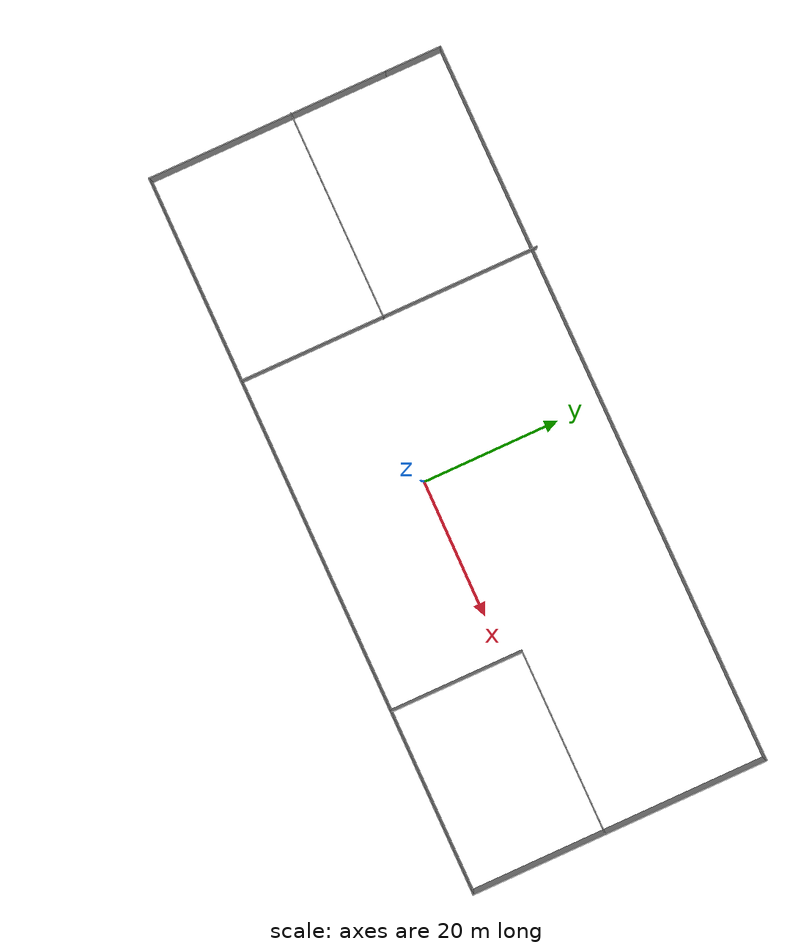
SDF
<?xml version='1.0'?>
<sdf version='1.6'>
  <model name='HomeBuilding'>
    <pose frame=''>0.157421 5.12798 0 0 -0 0</pose>
    <link name='Wall_11'>
      <collision name='Wall_11_Collision'>
        <geometry>
          <box>
            <size>19.5 0.15 2.5</size>
          </box>
        </geometry>
        <pose frame=''>0 0 1.25 0 -0 0</pose>
      </collision>
      <visual name='Wall_11_Visual'>
        <pose frame=''>0 0 1.25 0 -0 0</pose>
        <geometry>
          <box>
            <size>19.5 0.15 2.5</size>
          </box>
        </geometry>
        <material>
          <script>
            <uri>file://media/materials/scripts/gazebo.material</uri>
            <name>Gazebo/Grey</name>
          </script>
          <ambient>1 1 1 1</ambient>
        </material>
        <meta>
          <layer>0</layer>
        </meta>
      </visual>
      <pose frame=''>26.0787 -12.1762 0 0 -0 1.5708</pose>
    </link>
    <link name='Wall_12'>
      <collision name='Wall_12_Collision'>
        <geometry>
          <box>
            <size>26.75 0.15 2.5</size>
          </box>
        </geometry>
        <pose frame=''>0 0 1.25 0 -0 0</pose>
      </collision>
      <visual name='Wall_12_Visual'>
        <pose frame=''>0 0 1.25 0 -0 0</pose>
        <geometry>
          <box>
            <size>26.75 0.15 2.5</size>
          </box>
        </geometry>
        <material>
          <script>
            <uri>file://media/materials/scripts/gazebo.material</uri>
            <name>Gazebo/Grey</name>
          </script>
          <ambient>1 1 1 1</ambient>
        </material>
        <meta>
          <layer>0</layer>
        </meta>
      </visual>
      <pose frame=''>39.3787 -2.50123 0 0 -0 0</pose>
    </link>
    <link name='Wall_14'>
      <collision name='Wall_14_Collision'>
        <geometry>
          <box>
            <size>43.75 0.15 2.5</size>
          </box>
        </geometry>
        <pose frame=''>0 0 1.25 0 -0 0</pose>
      </collision>
      <visual name='Wall_14_Visual'>
        <pose frame=''>0 0 1.25 0 -0 0</pose>
        <geometry>
          <box>
            <size>43.75 0.15 2.5</size>
          </box>
        </geometry>
        <material>
          <script>
            <uri>file://media/materials/scripts/gazebo.material</uri>
            <name>Gazebo/Grey</name>
          </script>
          <ambient>1 1 1 1</ambient>
        </material>
        <meta>
          <layer>0</layer>
        </meta>
      </visual>
      <pose frame=''>-22.6766 0.069449 0 0 -0 1.5708</pose>
    </link>
    <link name='Wall_16'>
      <collision name='Wall_16_Collision'>
        <geometry>
          <box>
            <size>30.25 0.15 2.5</size>
          </box>
        </geometry>
        <pose frame=''>0 0 1.25 0 -0 0</pose>
      </collision>
      <visual name='Wall_16_Visual'>
        <pose frame=''>0 0 1.25 0 -0 0</pose>
        <geometry>
          <box>
            <size>30.25 0.15 2.5</size>
          </box>
        </geometry>
        <material>
          <script>
            <uri>file://media/materials/scripts/gazebo.material</uri>
            <name>Gazebo/Grey</name>
          </script>
          <ambient>1 1 1 1</ambient>
        </material>
        <meta>
          <layer>0</layer>
        </meta>
      </visual>
      <pose frame=''>-37.6762 -0.852663 0 0 -0 0</pose>
    </link>
    <link name='Wall_5'>
      <collision name='Wall_5_Collision'>
        <geometry>
          <box>
            <size>35 0.15 2.5</size>
          </box>
        </geometry>
        <pose frame=''>0 0 1.25 0 -0 0</pose>
      </collision>
      <visual name='Wall_5_Visual'>
        <pose frame=''>0 0 1.25 0 -0 0</pose>
        <geometry>
          <box>
            <size>35 0.15 2.5</size>
          </box>
        </geometry>
        <material>
          <script>
            <uri>file://media/materials/scripts/gazebo.material</uri>
            <name>Gazebo/Grey</name>
          </script>
          <ambient>1 1 1 1</ambient>
        </material>
        <meta>
          <layer>0</layer>
        </meta>
      </visual>
      <pose frame=''>-52.6238 -4.44445 0 0 -0 -1.5708</pose>
    </link>
    <link name='Wall_6'>
      <collision name='Wall_6_Collision'>
        <geometry>
          <box>
            <size>105.5 0.15 2.5</size>
          </box>
        </geometry>
        <pose frame=''>0 0 1.25 0 -0 0</pose>
      </collision>
      <visual name='Wall_6_Visual'>
        <pose frame=''>0 0 1.25 0 -0 0</pose>
        <geometry>
          <box>
            <size>105.5 0.15 2.5</size>
          </box>
        </geometry>
        <material>
          <script>
            <uri>file://media/materials/scripts/gazebo.material</uri>
            <name>Gazebo/Grey</name>
          </script>
          <ambient>1 1 1 1</ambient>
        </material>
        <meta>
          <layer>0</layer>
        </meta>
      </visual>
      <pose frame=''>0.051237 -21.8694 0 0 -0 0</pose>
    </link>
    <link name='Wall_7'>
      <collision name='Wall_7_Collision'>
        <geometry>
          <box>
            <size>43.25 0.15 2.5</size>
          </box>
        </geometry>
        <pose frame=''>0 0 1.25 0 -0 0</pose>
      </collision>
      <visual name='Wall_7_Visual'>
        <pose frame=''>0 0 1.25 0 -0 0</pose>
        <geometry>
          <box>
            <size>43.25 0.15 2.5</size>
          </box>
        </geometry>
        <material>
          <script>
            <uri>file://media/materials/scripts/gazebo.material</uri>
            <name>Gazebo/Grey</name>
          </script>
          <ambient>1 1 1 1</ambient>
        </material>
        <meta>
          <layer>0</layer>
        </meta>
      </visual>
      <pose frame=''>52.7262 -0.319448 0 0 -0 1.5708</pose>
    </link>
    <link name='Wall_8'>
      <collision name='Wall_8_Collision'>
        <geometry>
          <box>
            <size>105.5 0.15 2.5</size>
          </box>
        </geometry>
        <pose frame=''>0 0 1.25 0 -0 0</pose>
      </collision>
      <visual name='Wall_8_Visual'>
        <pose frame=''>0 0 1.25 0 -0 0</pose>
        <geometry>
          <box>
            <size>105.5 0.15 2.5</size>
          </box>
        </geometry>
        <material>
          <script>
            <uri>file://media/materials/scripts/gazebo.material</uri>
            <name>Gazebo/Grey</name>
          </script>
          <ambient>1 1 1 1</ambient>
        </material>
        <meta>
          <layer>0</layer>
        </meta>
      </visual>
      <pose frame=''>0.051237 21.2306 0 0 -0 3.14159</pose>
    </link>
    <link name='Wall_9'>
      <collision name='Wall_9_Collision'>
        <geometry>
          <box>
            <size>10 0.15 2.5</size>
          </box>
        </geometry>
        <pose frame=''>0 0 1.25 0 -0 0</pose>
      </collision>
      <visual name='Wall_9_Visual'>
        <pose frame=''>0 0 1.25 0 -0 0</pose>
        <geometry>
          <box>
            <size>10 0.15 2.5</size>
          </box>
        </geometry>
        <material>
          <script>
            <uri>file://media/materials/scripts/gazebo.material</uri>
            <name>Gazebo/Grey</name>
          </script>
          <ambient>1 1 1 1</ambient>
        </material>
        <meta>
          <layer>0</layer>
        </meta>
      </visual>
      <pose frame=''>-52.6238 16.3056 0 0 -0 -1.5708</pose>
    </link>
    <static>1</static>
  </model>
</sdf>
